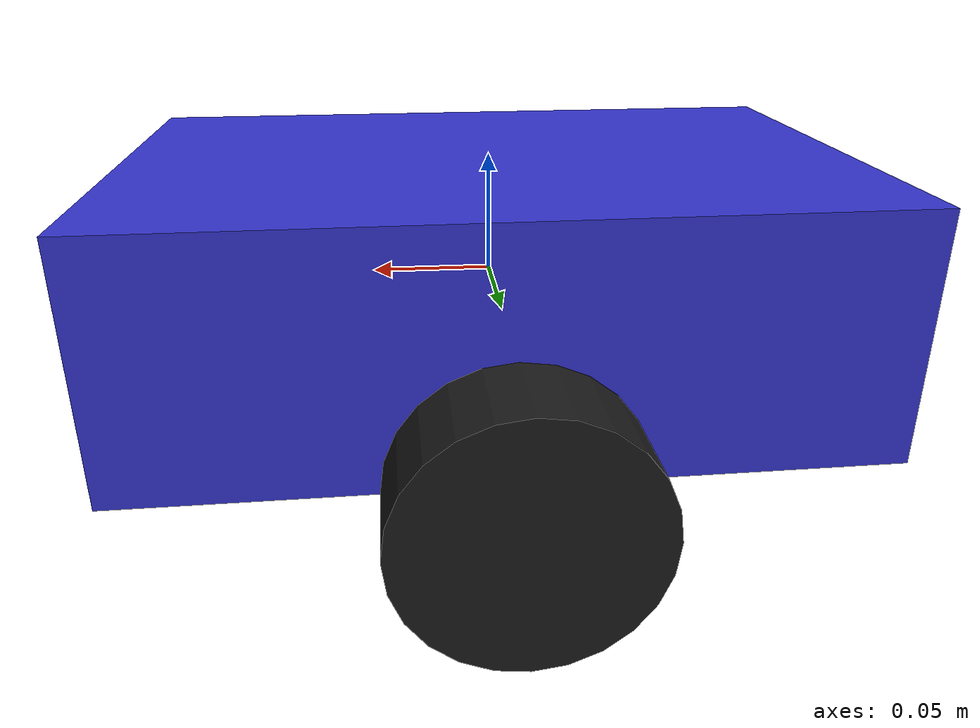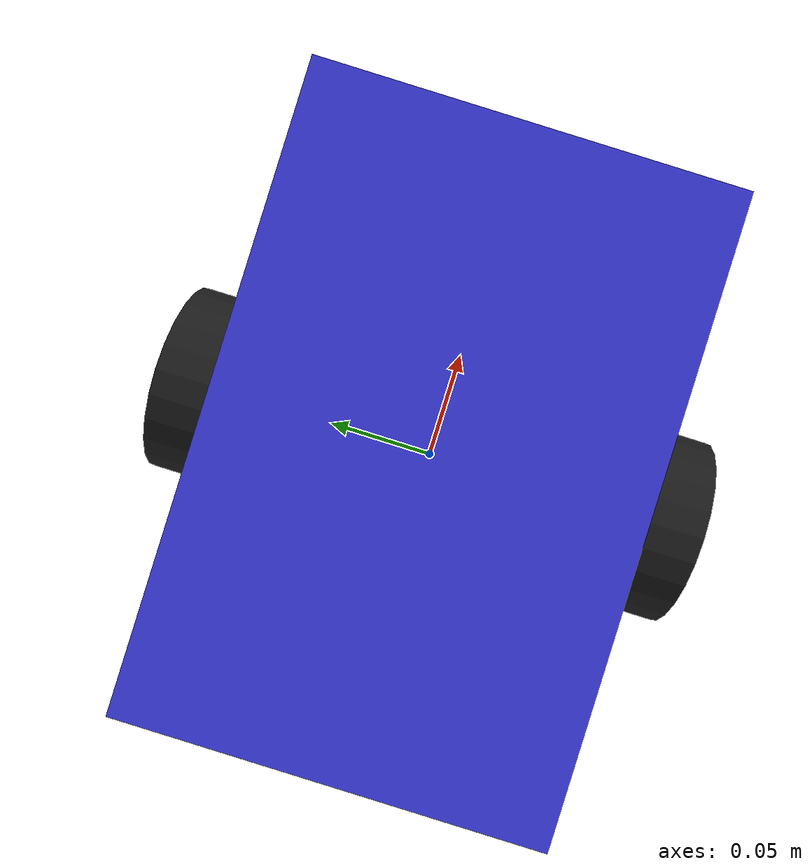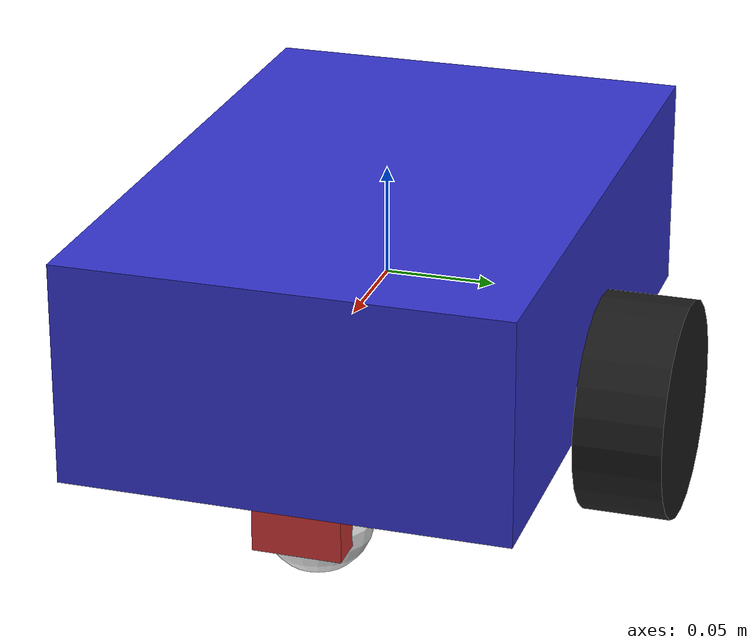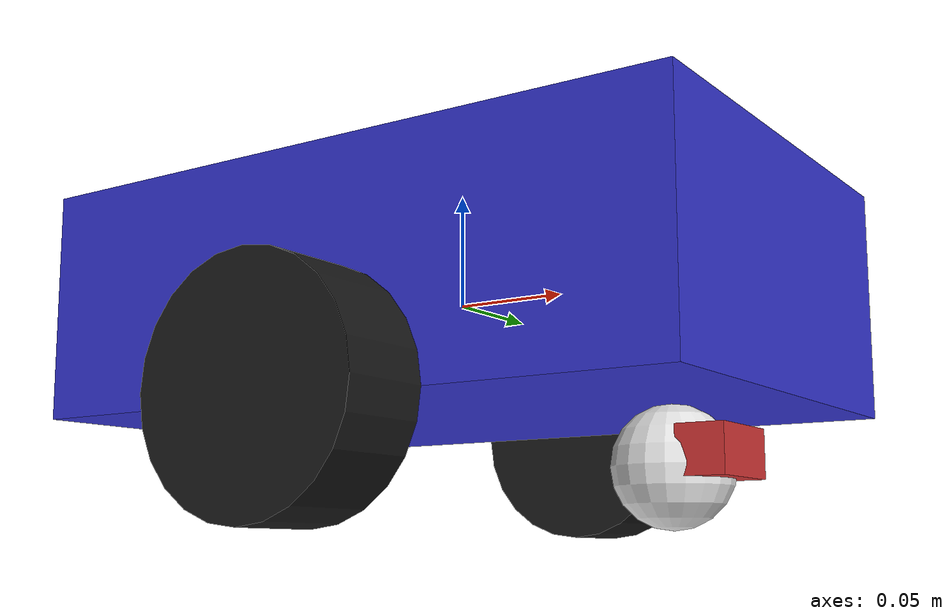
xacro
<?xml version="1.0"?>
<robot name="line_follower_robot" xmlns:xacro="http://www.ros.org/wiki/xacro">

  <!-- Constants -->
  <xacro:property name="chassis_length" value="0.3"/>
  <xacro:property name="chassis_width" value="0.2"/>
  <xacro:property name="chassis_height" value="0.1"/>
  <xacro:property name="chassis_mass" value="5.0"/>

  <xacro:property name="wheel_radius" value="0.05"/>
  <xacro:property name="wheel_thickness" value="0.04"/>
  <xacro:property name="wheel_mass" value="0.5"/>
  <xacro:property name="wheel_offset_y" value="0.12"/>
  <xacro:property name="wheel_offset_z" value="0.05"/>

  <xacro:property name="caster_radius" value="0.025"/>
  <xacro:property name="caster_mass" value="0.2"/>

  <!-- Materials -->
  <material name="blue">
    <color rgba="0.2 0.2 0.8 1"/>
  </material>

  <material name="black">
    <color rgba="0.1 0.1 0.1 1"/>
  </material>

  <material name="white">
    <color rgba="0.9 0.9 0.9 1"/>
  </material>

  <material name="red">
    <color rgba="0.8 0.2 0.2 1"/>
  </material>

  <!-- Base Link -->
  <link name="base_link">
    <visual>
      <origin xyz="0 0 0" rpy="0 0 0"/>
      <geometry>
        <box size="${chassis_length} ${chassis_width} ${chassis_height}"/>
      </geometry>
      <material name="blue"/>
    </visual>
    <collision>
      <origin xyz="0 0 0" rpy="0 0 0"/>
      <geometry>
        <box size="${chassis_length} ${chassis_width} ${chassis_height}"/>
      </geometry>
    </collision>
    <inertial>
      <origin xyz="0 0 0" rpy="0 0 0"/>
      <mass value="${chassis_mass}"/>
      <inertia
        ixx="${(chassis_mass / 12.0) * (chassis_width*chassis_width + chassis_height*chassis_height)}"
        ixy="0.0" ixz="0.0"
        iyy="${(chassis_mass / 12.0) * (chassis_length*chassis_length + chassis_height*chassis_height)}"
        iyz="0.0"
        izz="${(chassis_mass / 12.0) * (chassis_length*chassis_length + chassis_width*chassis_width)}"/>
    </inertial>
  </link>

  <!-- Left Wheel -->
  <link name="left_wheel">
    <visual>
      <origin xyz="0 0 0" rpy="1.5707963267948966 0 0"/>
      <geometry>
        <cylinder radius="${wheel_radius}" length="${wheel_thickness}"/>
      </geometry>
      <material name="black"/>
    </visual>
    <collision>
      <origin xyz="0 0 0" rpy="1.5707963267948966 0 0"/>
      <geometry>
        <cylinder radius="${wheel_radius}" length="${wheel_thickness}"/>
      </geometry>
    </collision>
    <inertial>
      <origin xyz="0 0 0" rpy="1.5707963267948966 0 0"/>
      <mass value="${wheel_mass}"/>
      <inertia
        ixx="${(wheel_mass / 12.0) * (3*wheel_radius*wheel_radius + wheel_thickness*wheel_thickness)}"
        ixy="0.0" ixz="0.0"
        iyy="${(wheel_mass / 12.0) * (3*wheel_radius*wheel_radius + wheel_thickness*wheel_thickness)}"
        iyz="0.0"
        izz="${(wheel_mass / 2.0) * wheel_radius*wheel_radius}"/>
    </inertial>
  </link>

  <joint name="left_wheel_joint" type="continuous">
    <parent link="base_link"/>
    <child link="left_wheel"/>
    <origin xyz="0 ${wheel_offset_y} ${-wheel_offset_z}" rpy="0 0 0"/>
    <axis xyz="0 1 0"/>
  </joint>

  <!-- Right Wheel -->
  <link name="right_wheel">
    <visual>
      <origin xyz="0 0 0" rpy="1.5707963267948966 0 0"/>
      <geometry>
        <cylinder radius="${wheel_radius}" length="${wheel_thickness}"/>
      </geometry>
      <material name="black"/>
    </visual>
    <collision>
      <origin xyz="0 0 0" rpy="1.5707963267948966 0 0"/>
      <geometry>
        <cylinder radius="${wheel_radius}" length="${wheel_thickness}"/>
      </geometry>
    </collision>
    <inertial>
      <origin xyz="0 0 0" rpy="1.5707963267948966 0 0"/>
      <mass value="${wheel_mass}"/>
      <inertia
        ixx="${(wheel_mass / 12.0) * (3*wheel_radius*wheel_radius + wheel_thickness*wheel_thickness)}"
        ixy="0.0" ixz="0.0"
        iyy="${(wheel_mass / 12.0) * (3*wheel_radius*wheel_radius + wheel_thickness*wheel_thickness)}"
        iyz="0.0"
        izz="${(wheel_mass / 2.0) * wheel_radius*wheel_radius}"/>
    </inertial>
  </link>

  <joint name="right_wheel_joint" type="continuous">
    <parent link="base_link"/>
    <child link="right_wheel"/>
    <origin xyz="0 ${-wheel_offset_y} ${-wheel_offset_z}" rpy="0 0 0"/>
    <axis xyz="0 1 0"/>
  </joint>

  <!-- Caster Wheel (front) -->
  <link name="caster_wheel">
    <visual>
      <origin xyz="0 0 0" rpy="0 0 0"/>
      <geometry>
        <sphere radius="${caster_radius}"/>
      </geometry>
      <material name="white"/>
    </visual>
    <collision>
      <origin xyz="0 0 0" rpy="0 0 0"/>
      <geometry>
        <sphere radius="${caster_radius}"/>
      </geometry>
    </collision>
    <inertial>
      <origin xyz="0 0 0" rpy="0 0 0"/>
      <mass value="${caster_mass}"/>
      <inertia
        ixx="${(2.0/5.0) * caster_mass * caster_radius * caster_radius}"
        ixy="0.0" ixz="0.0"
        iyy="${(2.0/5.0) * caster_mass * caster_radius * caster_radius}"
        iyz="0.0"
        izz="${(2.0/5.0) * caster_mass * caster_radius * caster_radius}"/>
    </inertial>
  </link>

  <joint name="caster_wheel_joint" type="fixed">
    <parent link="base_link"/>
    <child link="caster_wheel"/>
    <origin xyz="0.1 0 ${-wheel_offset_z - wheel_radius + caster_radius}" rpy="0 0 0"/>
  </joint>

  <!-- Camera Link -->
  <link name="camera_link">
    <visual>
      <origin xyz="0 0 0" rpy="0 0 0"/>
      <geometry>
        <box size="0.02 0.04 0.02"/>
      </geometry>
      <material name="red"/>
    </visual>
    <collision>
      <origin xyz="0 0 0" rpy="0 0 0"/>
      <geometry>
        <box size="0.02 0.04 0.02"/>
      </geometry>
    </collision>
    <inertial>
      <mass value="0.1"/>
      <inertia ixx="0.0001" ixy="0" ixz="0" iyy="0.0001" iyz="0" izz="0.0001"/>
    </inertial>
  </link>

  <joint name="camera_joint" type="fixed">
    <parent link="base_link"/>
    <child link="camera_link"/>
    <origin xyz="0.12 0 ${-chassis_height/2 - 0.02}" rpy="0 1.5707963267948966 0"/>
  </joint>

  <!-- Gazebo Plugins -->

  <!-- Differential Drive Controller -->
  <gazebo>
    <plugin name="differential_drive_controller" filename="libgazebo_ros_diff_drive.so">
      <update_rate>50</update_rate>
      <left_joint>left_wheel_joint</left_joint>
      <right_joint>right_wheel_joint</right_joint>
      <wheel_separation>${2*wheel_offset_y}</wheel_separation>
      <wheel_diameter>${2*wheel_radius}</wheel_diameter>
      <max_wheel_torque>20</max_wheel_torque>
      <max_wheel_acceleration>1.0</max_wheel_acceleration>
      <command_topic>cmd_vel</command_topic>
      <publish_odom>true</publish_odom>
      <publish_odom_tf>true</publish_odom_tf>
      <publish_wheel_tf>false</publish_wheel_tf>
      <odometry_topic>odom</odometry_topic>
      <odometry_frame>odom</odometry_frame>
      <robot_base_frame>base_link</robot_base_frame>
    </plugin>
  </gazebo>

  <!-- Camera Plugin -->
  <gazebo reference="camera_link">
    <sensor name="line_camera" type="camera">
      <update_rate>30.0</update_rate>
      <camera name="line_camera">
        <horizontal_fov>1.3962634</horizontal_fov>
        <image>
          <width>640</width>
          <height>480</height>
          <format>R8G8B8</format>
        </image>
        <clip>
          <near>0.02</near>
          <far>300</far>
        </clip>
      </camera>
      <plugin name="camera_controller" filename="libgazebo_ros_camera.so">
        <frame_name>camera_link</frame_name>
        <camera_name>line_camera</camera_name>
      </plugin>
    </sensor>
  </gazebo>

  <!-- Material colors for Gazebo -->
  <gazebo reference="base_link">
    <material>Gazebo/Blue</material>
  </gazebo>

  <gazebo reference="left_wheel">
    <material>Gazebo/Black</material>
    <mu1>1.0</mu1>
    <mu2>1.0</mu2>
  </gazebo>

  <gazebo reference="right_wheel">
    <material>Gazebo/Black</material>
    <mu1>1.0</mu1>
    <mu2>1.0</mu2>
  </gazebo>

  <gazebo reference="caster_wheel">
    <material>Gazebo/White</material>
    <mu1>0.0</mu1>
    <mu2>0.0</mu2>
  </gazebo>

</robot>
